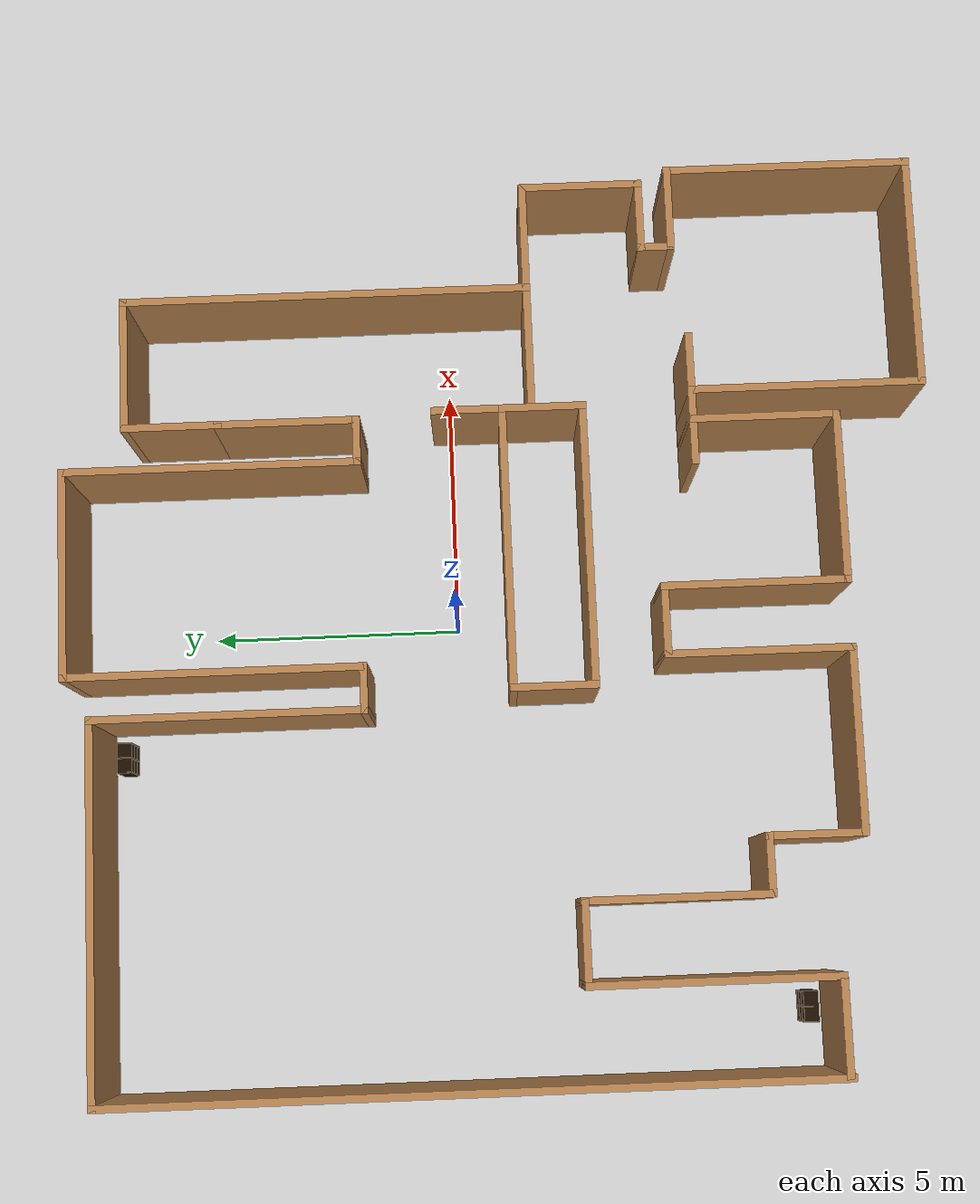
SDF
<sdf version="1.6">
 <world name="default">
  <model name="ground_plane">
   <static>1</static>
   <link name="link">
    <collision name="collision">
     <geometry><plane><normal>0 0 1</normal><size>100 100</size></plane></geometry>
     <surface>
      <contact><collide_bitmask>65535</collide_bitmask></contact>
      <friction><ode><mu>100</mu><mu2>50</mu2></ode></friction>
     </surface>
    </collision>
    <visual name="visual">
     <cast_shadows>0</cast_shadows>
     <geometry><plane><normal>0 0 1</normal><size>100 100</size></plane></geometry>
     <material>
      <script><uri>file://media/materials/scripts/gazebo.material</uri><name>Gazebo/Grey</name></script>
     </material>
    </visual>
   </link>
  </model>
  <model name="map_128">
   <pose>-0.128578 -0.864762 0 0 -0 0</pose>
   <link name="Wall_10">
    <collision name="Wall_10_Collision">
     <geometry><box><size>5 0.15 2.5</size></box></geometry>
     <pose>0 0 1.25 0 -0 0</pose>
    </collision>
    <visual name="Wall_10_Visual">
     <pose>0 0 1.25 0 -0 0</pose>
     <geometry><box><size>5 0.15 2.5</size></box></geometry>
     <material>
      <script><uri>file://media/materials/scripts/gazebo.material</uri><name>Gazebo/Wood</name></script>
      <ambient>1 1 1 1</ambient>
     </material>
     <meta><layer>0</layer></meta>
    </visual>
    <pose>-7.15 -3.8 0 0 -0 1.5708</pose>
   </link>
   <link name="Wall_11">
    <collision name="Wall_11_Collision">
     <geometry><box><size>1.75 0.15 2.5</size></box></geometry>
     <pose>0 0 1.25 0 -0 0</pose>
    </collision>
    <visual name="Wall_11_Visual">
     <pose>0 0 1.25 0 -0 0</pose>
     <geometry><box><size>1.75 0.15 2.5</size></box></geometry>
     <material>
      <script><uri>file://media/materials/scripts/gazebo.material</uri><name>Gazebo/Wood</name></script>
      <ambient>1 1 1 1</ambient>
     </material>
     <meta><layer>0</layer></meta>
    </visual>
    <pose>-6.35 -1.375 0 0 -0 0</pose>
   </link>
   <link name="Wall_12">
    <collision name="Wall_12_Collision">
     <geometry><box><size>3.75 0.15 2.5</size></box></geometry>
     <pose>0 0 1.25 0 -0 0</pose>
    </collision>
    <visual name="Wall_12_Visual">
     <pose>0 0 1.25 0 -0 0</pose>
     <geometry><box><size>3.75 0.15 2.5</size></box></geometry>
     <material>
      <script><uri>file://media/materials/scripts/gazebo.material</uri><name>Gazebo/Wood</name></script>
      <ambient>1 1 1 1</ambient>
     </material>
     <meta><layer>0</layer></meta>
    </visual>
    <pose>-5.55 -3.175 0 0 -0 -1.5708</pose>
   </link>
   <link name="Wall_13">
    <collision name="Wall_13_Collision">
     <geometry><box><size>1.25 0.15 2.5</size></box></geometry>
     <pose>0 0 1.25 0 -0 0</pose>
    </collision>
    <visual name="Wall_13_Visual">
     <pose>0 0 1.25 0 -0 0</pose>
     <geometry><box><size>1.25 0.15 2.5</size></box></geometry>
     <material>
      <script><uri>file://media/materials/scripts/gazebo.material</uri><name>Gazebo/Wood</name></script>
      <ambient>1 1 1 1</ambient>
     </material>
     <meta><layer>0</layer></meta>
    </visual>
    <pose>-5 -4.975 0 0 -0 0</pose>
   </link>
   <link name="Wall_14">
    <collision name="Wall_14_Collision">
     <geometry><box><size>2 0.15 2.5</size></box></geometry>
     <pose>0 0 1.25 0 -0 0</pose>
    </collision>
    <visual name="Wall_14_Visual">
     <pose>0 0 1.25 0 -0 0</pose>
     <geometry><box><size>2 0.15 2.5</size></box></geometry>
     <material>
      <script><uri>file://media/materials/scripts/gazebo.material</uri><name>Gazebo/Wood</name></script>
      <ambient>1 1 1 1</ambient>
     </material>
     <meta><layer>0</layer></meta>
    </visual>
    <pose>-4.45 -5.9 0 0 -0 -1.5708</pose>
   </link>
   <link name="Wall_15">
    <collision name="Wall_15_Collision">
     <geometry><box><size>3.75 0.15 2.5</size></box></geometry>
     <pose>0 0 1.25 0 -0 0</pose>
    </collision>
    <visual name="Wall_15_Visual">
     <pose>0 0 1.25 0 -0 0</pose>
     <geometry><box><size>3.75 0.15 2.5</size></box></geometry>
     <material>
      <script><uri>file://media/materials/scripts/gazebo.material</uri><name>Gazebo/Wood</name></script>
      <ambient>1 1 1 1</ambient>
     </material>
     <meta><layer>0</layer></meta>
    </visual>
    <pose>-2.65 -6.825 0 0 -0 0</pose>
   </link>
   <link name="Wall_16">
    <collision name="Wall_16_Collision">
     <geometry><box><size>3.75 0.15 2.5</size></box></geometry>
     <pose>0 0 1.25 0 -0 0</pose>
    </collision>
    <visual name="Wall_16_Visual">
     <pose>0 0 1.25 0 -0 0</pose>
     <geometry><box><size>3.75 0.15 2.5</size></box></geometry>
     <material>
      <script><uri>file://media/materials/scripts/gazebo.material</uri><name>Gazebo/Wood</name></script>
      <ambient>1 1 1 1</ambient>
     </material>
     <meta><layer>0</layer></meta>
    </visual>
    <pose>-0.85 -5.025 0 0 -0 1.5708</pose>
   </link>
   <link name="Wall_17">
    <collision name="Wall_17_Collision">
     <geometry><box><size>1.5 0.15 2.5</size></box></geometry>
     <pose>0 0 1.25 0 -0 0</pose>
    </collision>
    <visual name="Wall_17_Visual">
     <pose>0 0 1.25 0 -0 0</pose>
     <geometry><box><size>1.5 0.15 2.5</size></box></geometry>
     <material>
      <script><uri>file://media/materials/scripts/gazebo.material</uri><name>Gazebo/Wood</name></script>
      <ambient>1 1 1 1</ambient>
     </material>
     <meta><layer>0</layer></meta>
    </visual>
    <pose>-0.175 -3.225 0 0 -0 0</pose>
   </link>
   <link name="Wall_18">
    <collision name="Wall_18_Collision">
     <geometry><box><size>3.75 0.15 2.5</size></box></geometry>
     <pose>0 0 1.25 0 -0 0</pose>
    </collision>
    <visual name="Wall_18_Visual">
     <pose>0 0 1.25 0 -0 0</pose>
     <geometry><box><size>3.75 0.15 2.5</size></box></geometry>
     <material>
      <script><uri>file://media/materials/scripts/gazebo.material</uri><name>Gazebo/Wood</name></script>
      <ambient>1 1 1 1</ambient>
     </material>
     <meta><layer>0</layer></meta>
    </visual>
    <pose>0.5 -5.025 0 0 -0 -1.5708</pose>
   </link>
   <link name="Wall_19">
    <collision name="Wall_19_Collision">
     <geometry><box><size>3.5 0.15 2.5</size></box></geometry>
     <pose>0 0 1.25 0 -0 0</pose>
    </collision>
    <visual name="Wall_19_Visual">
     <pose>0 0 1.25 0 -0 0</pose>
     <geometry><box><size>3.5 0.15 2.5</size></box></geometry>
     <material>
      <script><uri>file://media/materials/scripts/gazebo.material</uri><name>Gazebo/Wood</name></script>
      <ambient>1 1 1 1</ambient>
     </material>
     <meta><layer>0</layer></meta>
    </visual>
    <pose>2.175 -6.825 0 0 -0 0</pose>
   </link>
   <link name="Wall_20">
    <collision name="Wall_20_Collision">
     <geometry><box><size>3 0.15 2.5</size></box></geometry>
     <pose>0 0 1.25 0 -0 0</pose>
    </collision>
    <visual name="Wall_20_Visual">
     <pose>0 0 1.25 0 -0 0</pose>
     <geometry><box><size>3 0.15 2.5</size></box></geometry>
     <material>
      <script><uri>file://media/materials/scripts/gazebo.material</uri><name>Gazebo/Wood</name></script>
      <ambient>1 1 1 1</ambient>
     </material>
     <meta><layer>0</layer></meta>
    </visual>
    <pose>3.85 -5.4 0 0 -0 1.5708</pose>
   </link>
   <link name="Wall_21">
    <collision name="Wall_21_Collision">
     <geometry><box><size>0.75 0.15 2.5</size></box></geometry>
     <pose>0 0 1.25 0 -0 0</pose>
    </collision>
    <visual name="Wall_21_Visual">
     <pose>0 0 1.25 0 -0 0</pose>
     <geometry><box><size>0.75 0.15 2.5</size></box></geometry>
     <material>
      <script><uri>file://media/materials/scripts/gazebo.material</uri><name>Gazebo/Wood</name></script>
      <ambient>1 1 1 1</ambient>
     </material>
     <meta><layer>0</layer></meta>
    </visual>
    <pose>4.15 -3.975 0 0 -0 0</pose>
   </link>
   <link name="Wall_22">
    <collision name="Wall_22_Collision">
     <geometry><box><size>4.75 0.15 2.5</size></box></geometry>
     <pose>0 0 1.25 0 -0 0</pose>
    </collision>
    <visual name="Wall_22_Visual">
     <pose>0 0 1.25 0 -0 0</pose>
     <geometry><box><size>4.75 0.15 2.5</size></box></geometry>
     <material>
      <script><uri>file://media/materials/scripts/gazebo.material</uri><name>Gazebo/Wood</name></script>
      <ambient>1 1 1 1</ambient>
     </material>
     <meta><layer>0</layer></meta>
    </visual>
    <pose>4.45 -6.275 0 0 -0 -1.5708</pose>
   </link>
   <link name="Wall_23">
    <collision name="Wall_23_Collision">
     <geometry><box><size>4.75 0.15 2.5</size></box></geometry>
     <pose>0 0 1.25 0 -0 0</pose>
    </collision>
    <visual name="Wall_23_Visual">
     <pose>0 0 1.25 0 -0 0</pose>
     <geometry><box><size>4.75 0.15 2.5</size></box></geometry>
     <material>
      <script><uri>file://media/materials/scripts/gazebo.material</uri><name>Gazebo/Wood</name></script>
      <ambient>1 1 1 1</ambient>
     </material>
     <meta><layer>0</layer></meta>
    </visual>
    <pose>6.75 -8.575 0 0 -0 0</pose>
   </link>
   <link name="Wall_24">
    <collision name="Wall_24_Collision">
     <geometry><box><size>5 0.15 2.5</size></box></geometry>
     <pose>0 0 1.25 0 -0 0</pose>
    </collision>
    <visual name="Wall_24_Visual">
     <pose>0 0 1.25 0 -0 0</pose>
     <geometry><box><size>5 0.15 2.5</size></box></geometry>
     <material>
      <script><uri>file://media/materials/scripts/gazebo.material</uri><name>Gazebo/Wood</name></script>
      <ambient>1 1 1 1</ambient>
     </material>
     <meta><layer>0</layer></meta>
    </visual>
    <pose>9.05 -6.15 0 0 -0 1.5708</pose>
   </link>
   <link name="Wall_25">
    <collision name="Wall_25_Collision">
     <geometry><box><size>1.75 0.15 2.5</size></box></geometry>
     <pose>0 0 1.25 0 -0 0</pose>
    </collision>
    <visual name="Wall_25_Visual">
     <pose>0 0 1.25 0 -0 0</pose>
     <geometry><box><size>1.75 0.15 2.5</size></box></geometry>
     <material>
      <script><uri>file://media/materials/scripts/gazebo.material</uri><name>Gazebo/Wood</name></script>
      <ambient>1 1 1 1</ambient>
     </material>
     <meta><layer>0</layer></meta>
    </visual>
    <pose>8.25 -3.725 0 0 -0 3.14159</pose>
   </link>
   <link name="Wall_26">
    <collision name="Wall_26_Collision">
     <geometry><box><size>0.75 0.15 2.5</size></box></geometry>
     <pose>0 0 1.25 0 -0 0</pose>
    </collision>
    <visual name="Wall_26_Visual">
     <pose>0 0 1.25 0 -0 0</pose>
     <geometry><box><size>0.75 0.15 2.5</size></box></geometry>
     <material>
      <script><uri>file://media/materials/scripts/gazebo.material</uri><name>Gazebo/Wood</name></script>
      <ambient>1 1 1 1</ambient>
     </material>
     <meta><layer>0</layer></meta>
    </visual>
    <pose>7.45 -3.425 0 0 -0 1.5708</pose>
   </link>
   <link name="Wall_27">
    <collision name="Wall_27_Collision">
     <geometry><box><size>1.5 0.15 2.5</size></box></geometry>
     <pose>0 0 1.25 0 -0 0</pose>
    </collision>
    <visual name="Wall_27_Visual">
     <pose>0 0 1.25 0 -0 0</pose>
     <geometry><box><size>1.5 0.15 2.5</size></box></geometry>
     <material>
      <script><uri>file://media/materials/scripts/gazebo.material</uri><name>Gazebo/Wood</name></script>
      <ambient>1 1 1 1</ambient>
     </material>
     <meta><layer>0</layer></meta>
    </visual>
    <pose>8.125 -3.125 0 0 -0 0</pose>
   </link>
   <link name="Wall_28">
    <collision name="Wall_28_Collision">
     <geometry><box><size>2.5 0.15 2.5</size></box></geometry>
     <pose>0 0 1.25 0 -0 0</pose>
    </collision>
    <visual name="Wall_28_Visual">
     <pose>0 0 1.25 0 -0 0</pose>
     <geometry><box><size>2.5 0.15 2.5</size></box></geometry>
     <material>
      <script><uri>file://media/materials/scripts/gazebo.material</uri><name>Gazebo/Wood</name></script>
      <ambient>1 1 1 1</ambient>
     </material>
     <meta><layer>0</layer></meta>
    </visual>
    <pose>8.8 -1.95 0 0 -0 1.5708</pose>
   </link>
   <link name="Wall_29">
    <collision name="Wall_29_Collision">
     <geometry><box><size>2.25 0.15 2.5</size></box></geometry>
     <pose>0 0 1.25 0 -0 0</pose>
    </collision>
    <visual name="Wall_29_Visual">
     <pose>0 0 1.25 0 -0 0</pose>
     <geometry><box><size>2.25 0.15 2.5</size></box></geometry>
     <material>
      <script><uri>file://media/materials/scripts/gazebo.material</uri><name>Gazebo/Wood</name></script>
      <ambient>1 1 1 1</ambient>
     </material>
     <meta><layer>0</layer></meta>
    </visual>
    <pose>7.75 -0.775 0 0 -0 3.14159</pose>
   </link>
   <link name="Wall_30">
    <collision name="Wall_30_Collision">
     <geometry><box><size>8.25 0.15 2.5</size></box></geometry>
     <pose>0 0 1.25 0 -0 0</pose>
    </collision>
    <visual name="Wall_30_Visual">
     <pose>0 0 1.25 0 -0 0</pose>
     <geometry><box><size>8.25 0.15 2.5</size></box></geometry>
     <material>
      <script><uri>file://media/materials/scripts/gazebo.material</uri><name>Gazebo/Wood</name></script>
      <ambient>1 1 1 1</ambient>
     </material>
     <meta><layer>0</layer></meta>
    </visual>
    <pose>6.7 3.275 0 0 -0 1.5708</pose>
   </link>
   <link name="Wall_31">
    <collision name="Wall_31_Collision">
     <geometry><box><size>2.75 0.15 2.5</size></box></geometry>
     <pose>0 0 1.25 0 -0 0</pose>
    </collision>
    <visual name="Wall_31_Visual">
     <pose>0 0 1.25 0 -0 0</pose>
     <geometry><box><size>2.75 0.15 2.5</size></box></geometry>
     <material>
      <script><uri>file://media/materials/scripts/gazebo.material</uri><name>Gazebo/Wood</name></script>
      <ambient>1 1 1 1</ambient>
     </material>
     <meta><layer>0</layer></meta>
    </visual>
    <pose>5.4 7.325 0 0 -0 3.14159</pose>
   </link>
   <link name="Wall_32">
    <collision name="Wall_32_Collision">
     <geometry><box><size>2 0.15 2.5</size></box></geometry>
     <pose>0 0 1.25 0 -0 0</pose>
    </collision>
    <visual name="Wall_32_Visual">
     <pose>0 0 1.25 0 -0 0</pose>
     <geometry><box><size>2 0.15 2.5</size></box></geometry>
     <material>
      <script><uri>file://media/materials/scripts/gazebo.material</uri><name>Gazebo/Wood</name></script>
      <ambient>1 1 1 1</ambient>
     </material>
     <meta><layer>0</layer></meta>
    </visual>
    <pose>4.1 6.4 0 0 -0 -1.5708</pose>
   </link>
   <link name="Wall_35">
    <collision name="Wall_35_Collision">
     <geometry><box><size>4.25 0.15 2.5</size></box></geometry>
     <pose>0 0 1.25 0 -0 0</pose>
    </collision>
    <visual name="Wall_35_Visual">
     <pose>0 0 1.25 0 -0 0</pose>
     <geometry><box><size>4.25 0.15 2.5</size></box></geometry>
     <material>
      <script><uri>file://media/materials/scripts/gazebo.material</uri><name>Gazebo/Wood</name></script>
      <ambient>1 1 1 1</ambient>
     </material>
     <meta><layer>0</layer></meta>
    </visual>
    <pose>1.2 8.575 0 0 -0 3.14159</pose>
   </link>
   <link name="Wall_36">
    <collision name="Wall_36_Collision">
     <geometry><box><size>6 0.15 2.5</size></box></geometry>
     <pose>0 0 1.25 0 -0 0</pose>
    </collision>
    <visual name="Wall_36_Visual">
     <pose>0 0 1.25 0 -0 0</pose>
     <geometry><box><size>6 0.15 2.5</size></box></geometry>
     <material>
      <script><uri>file://media/materials/scripts/gazebo.material</uri><name>Gazebo/Wood</name></script>
      <ambient>1 1 1 1</ambient>
     </material>
     <meta><layer>0</layer></meta>
    </visual>
    <pose>-0.85 5.65 0 0 -0 -1.5708</pose>
   </link>
   <link name="Wall_37">
    <collision name="Wall_37_Collision">
     <geometry><box><size>1 0.15 2.5</size></box></geometry>
     <pose>0 0 1.25 0 -0 0</pose>
    </collision>
    <visual name="Wall_37_Visual">
     <pose>0 0 1.25 0 -0 0</pose>
     <geometry><box><size>1 0.15 2.5</size></box></geometry>
     <material>
      <script><uri>file://media/materials/scripts/gazebo.material</uri><name>Gazebo/Wood</name></script>
      <ambient>1 1 1 1</ambient>
     </material>
     <meta><layer>0</layer></meta>
    </visual>
    <pose>-1.275 2.725 0 0 -0 3.14159</pose>
   </link>
   <link name="Wall_38">
    <collision name="Wall_38_Collision">
     <geometry><box><size>5.5 0.15 2.5</size></box></geometry>
     <pose>0 0 1.25 0 -0 0</pose>
    </collision>
    <visual name="Wall_38_Visual">
     <pose>0 0 1.25 0 -0 0</pose>
     <geometry><box><size>5.5 0.15 2.5</size></box></geometry>
     <material>
      <script><uri>file://media/materials/scripts/gazebo.material</uri><name>Gazebo/Wood</name></script>
      <ambient>1 1 1 1</ambient>
     </material>
     <meta><layer>0</layer></meta>
    </visual>
    <pose>-1.7 5.4 0 0 -0 1.5708</pose>
   </link>
   <link name="Wall_39">
    <collision name="Wall_39_Collision">
     <geometry><box><size>7.5 0.15 2.5</size></box></geometry>
     <pose>0 0 1.25 0 -0 0</pose>
    </collision>
    <visual name="Wall_39_Visual">
     <pose>0 0 1.25 0 -0 0</pose>
     <geometry><box><size>7.5 0.15 2.5</size></box></geometry>
     <material>
      <script><uri>file://media/materials/scripts/gazebo.material</uri><name>Gazebo/Wood</name></script>
      <ambient>1 1 1 1</ambient>
     </material>
     <meta><layer>0</layer></meta>
    </visual>
    <pose>-5.375 8.075 0 0 -0 3.14159</pose>
   </link>
   <link name="Wall_41">
    <collision name="Wall_41_Collision">
     <geometry><box><size>14.5 0.15 2.5</size></box></geometry>
     <pose>0 0 1.25 0 -0 0</pose>
    </collision>
    <visual name="Wall_41_Visual">
     <pose>0 0 1.25 0 -0 0</pose>
     <geometry><box><size>14.5 0.15 2.5</size></box></geometry>
     <material>
      <script><uri>file://media/materials/scripts/gazebo.material</uri><name>Gazebo/Wood</name></script>
      <ambient>1 1 1 1</ambient>
     </material>
     <meta><layer>0</layer></meta>
    </visual>
    <pose>-9.05 0.9 0 0 -0 -1.5708</pose>
   </link>
   <link name="Wall_43">
    <collision name="Wall_43_Collision">
     <geometry><box><size>5.75 0.15 2.5</size></box></geometry>
     <pose>0 0 1.25 0 -0 0</pose>
    </collision>
    <visual name="Wall_43_Visual">
     <pose>0 0 1.25 0 -0 0</pose>
     <geometry><box><size>5.75 0.15 2.5</size></box></geometry>
     <material>
      <script><uri>file://media/materials/scripts/gazebo.material</uri><name>Gazebo/Wood</name></script>
      <ambient>1 1 1 1</ambient>
     </material>
     <meta><layer>0</layer></meta>
    </visual>
    <pose>1.41512 -0.186365 0 0 -0 3.14159</pose>
   </link>
   <link name="Wall_44">
    <collision name="Wall_44_Collision">
     <geometry><box><size>1.75 0.15 2.5</size></box></geometry>
     <pose>0 0 1.25 0 -0 0</pose>
    </collision>
    <visual name="Wall_44_Visual">
     <pose>0 0 1.25 0 -0 0</pose>
     <geometry><box><size>1.75 0.15 2.5</size></box></geometry>
     <material>
      <script><uri>file://media/materials/scripts/gazebo.material</uri><name>Gazebo/Wood</name></script>
      <ambient>1 1 1 1</ambient>
     </material>
     <meta><layer>0</layer></meta>
    </visual>
    <pose>-1.38488 -0.986365 0 0 -0 -1.5708</pose>
   </link>
   <link name="Wall_45">
    <collision name="Wall_45_Collision">
     <geometry><box><size>5.75 0.15 2.5</size></box></geometry>
     <pose>0 0 1.25 0 -0 0</pose>
    </collision>
    <visual name="Wall_45_Visual">
     <pose>0 0 1.25 0 -0 0</pose>
     <geometry><box><size>5.75 0.15 2.5</size></box></geometry>
     <material>
      <script><uri>file://media/materials/scripts/gazebo.material</uri><name>Gazebo/Wood</name></script>
      <ambient>1 1 1 1</ambient>
     </material>
     <meta><layer>0</layer></meta>
    </visual>
    <pose>1.41512 -1.78636 0 0 -0 0</pose>
   </link>
   <link name="Wall_46">
    <collision name="Wall_46_Collision">
     <geometry><box><size>1.75 0.15 2.5</size></box></geometry>
     <pose>0 0 1.25 0 -0 0</pose>
    </collision>
    <visual name="Wall_46_Visual">
     <pose>0 0 1.25 0 -0 0</pose>
     <geometry><box><size>1.75 0.15 2.5</size></box></geometry>
     <material>
      <script><uri>file://media/materials/scripts/gazebo.material</uri><name>Gazebo/Wood</name></script>
      <ambient>1 1 1 1</ambient>
     </material>
     <meta><layer>0</layer></meta>
    </visual>
    <pose>4.21512 -0.986365 0 0 -0 1.5708</pose>
   </link>
   <link name="Wall_48">
    <collision name="Wall_48_Collision">
     <geometry><box><size>6 0.15 2.5</size></box></geometry>
     <pose>0 0 1.25 0 -0 0</pose>
    </collision>
    <visual name="Wall_48_Visual">
     <pose>0 0 1.25 0 -0 0</pose>
     <geometry><box><size>6 0.15 2.5</size></box></geometry>
     <material>
      <script><uri>file://media/materials/scripts/gazebo.material</uri><name>Gazebo/Wood</name></script>
      <ambient>1 1 1 1</ambient>
     </material>
     <meta><layer>0</layer></meta>
    </visual>
    <pose>3.25 5.65 0 0 -0 -1.5708</pose>
   </link>
   <link name="Wall_51">
    <collision name="Wall_51_Collision">
     <geometry><box><size>1 0.15 2.5</size></box></geometry>
     <pose>0 0 1.25 0 -0 0</pose>
    </collision>
    <visual name="Wall_51_Visual">
     <pose>0 0 1.25 0 -0 0</pose>
     <geometry><box><size>1 0.15 2.5</size></box></geometry>
     <material>
      <script><uri>file://media/materials/scripts/gazebo.material</uri><name>Gazebo/Wood</name></script>
      <ambient>1 1 1 1</ambient>
     </material>
     <meta><layer>0</layer></meta>
    </visual>
    <pose>3.675 2.725 0 0 -0 0</pose>
   </link>
   <link name="Wall_52">
    <collision name="Wall_52_Collision">
     <geometry><box><size>2.9 0.15 2.5</size></box></geometry>
     <pose>0 0 1.25 0 -0 0</pose>
    </collision>
    <visual name="Wall_52_Visual">
     <pose>0 0 1.25 0 -0 0</pose>
     <geometry><box><size>2.9 0.15 2.5</size></box></geometry>
     <material>
      <script><uri>file://media/materials/scripts/gazebo.material</uri><name>Gazebo/Wood</name></script>
      <ambient>1 1 1 1</ambient>
     </material>
     <meta><layer>0</layer></meta>
    </visual>
    <pose>4.1 4.1 0 0 -0 1.5708</pose>
   </link>
   <link name="Wall_54">
    <collision name="Wall_54_Collision">
     <geometry><box><size>1.5 0.15 2.5</size></box></geometry>
     <pose>0 0 1.25 0 -0 0</pose>
    </collision>
    <visual name="Wall_54_Visual">
     <pose>0 0 1.25 0 -0 0</pose>
     <geometry><box><size>1.5 0.15 2.5</size></box></geometry>
     <material>
      <script><uri>file://media/materials/scripts/gazebo.material</uri><name>Gazebo/Wood</name></script>
      <ambient>1 1 1 1</ambient>
     </material>
     <meta><layer>0</layer></meta>
    </visual>
    <pose>4.21512 0.488635 0 0 -0 1.5708</pose>
   </link>
   <link name="Wall_56">
    <collision name="Wall_56_Collision">
     <geometry><box><size>2.5 0.15 2.5</size></box></geometry>
     <pose>0 0 1.25 0 -0 0</pose>
    </collision>
    <visual name="Wall_56_Visual">
     <pose>0 0 1.25 0 -0 0</pose>
     <geometry><box><size>2.5 0.15 2.5</size></box></geometry>
     <material>
      <script><uri>file://media/materials/scripts/gazebo.material</uri><name>Gazebo/Wood</name></script>
      <ambient>1 1 1 1</ambient>
     </material>
     <meta><layer>0</layer></meta>
    </visual>
    <pose>5.525 -0.775 0 0 -0 3.14159</pose>
   </link>
   <link name="Wall_58">
    <collision name="Wall_58_Collision">
     <geometry><box><size>1.25 0.15 2.5</size></box></geometry>
     <pose>0 0 1.25 0 -0 0</pose>
    </collision>
    <visual name="Wall_58_Visual">
     <pose>0 0 1.25 0 -0 0</pose>
     <geometry><box><size>1.25 0.15 2.5</size></box></geometry>
     <material>
      <script><uri>file://media/materials/scripts/gazebo.material</uri><name>Gazebo/Wood</name></script>
      <ambient>1 1 1 1</ambient>
     </material>
     <meta><layer>0</layer></meta>
    </visual>
    <pose>5 -3.975 0 0 -0 0</pose>
   </link>
   <link name="Wall_60">
    <collision name="Wall_60_Collision">
     <geometry><box><size>1 0.15 2.5</size></box></geometry>
     <pose>0 0 1.25 0 -0 0</pose>
    </collision>
    <visual name="Wall_60_Visual">
     <pose>0 0 1.25 0 -0 0</pose>
     <geometry><box><size>1 0.15 2.5</size></box></geometry>
     <material>
      <script><uri>file://media/materials/scripts/gazebo.material</uri><name>Gazebo/Wood</name></script>
      <ambient>1 1 1 1</ambient>
     </material>
     <meta><layer>0</layer></meta>
    </visual>
    <pose>3.425 -3.975 0 0 -0 3.14159</pose>
   </link>
   <link name="Wall_7">
    <collision name="Wall_7_Collision">
     <geometry><box><size>2 0.15 2.5</size></box></geometry>
     <pose>0 0 1.25 0 -0 0</pose>
    </collision>
    <visual name="Wall_7_Visual">
     <pose>0 0 1.25 0 -0 0</pose>
     <geometry><box><size>2 0.15 2.5</size></box></geometry>
     <material>
      <script><uri>file://media/materials/scripts/gazebo.material</uri><name>Gazebo/Wood</name></script>
      <ambient>1 1 1 1</ambient>
     </material>
     <meta><layer>0</layer></meta>
    </visual>
    <pose>-8.075 -6.225 0 0 -0 0</pose>
   </link>
   <static>1</static>
  </model>
  <model name="6_Cube_StorageE_1">
   <link name="Wall_0">
    <pose>0 0 0.01 0 -0 0</pose>
    <inertial>
     <mass>1.6201</mass>
     <inertia><ixx>0.0119</ixx><iyy>0.0631</iyy><izz>0.0513</izz><ixy>0</ixy><ixz>0</ixz><iyz>0</iyz></inertia>
    </inertial>
    <collision name="Wall_0_Collision"><geometry><box><size>0.616 0.296 0.02</size></box></geometry></collision>
    <visual name="Wall_0_Visual">
     <geometry><box><size>0.616 0.296 0.02</size></box></geometry>
     <material>
      <script><uri>file://media/materials/scripts/gazebo.material</uri><name>Gazebo/Grey</name></script>
      <ambient>0.105882 0.0509804 0 1</ambient>
     </material>
    </visual>
   </link>
   <joint name="0_2" type="fixed">
    <pose>-0.308 0 0 0 -0 0</pose>
    <parent>Wall_2</parent>
    <child>Wall_0</child>
    <axis>
     <xyz>1 0 0</xyz>
     <use_parent_model_frame>0</use_parent_model_frame>
     <limit><lower>-1e+16</lower><upper>1e+16</upper></limit>
    </axis>
   </joint>
   <joint name="0_12" type="fixed">
    <parent>Wall_12</parent>
    <child>Wall_0</child>
    <axis>
     <xyz>0 0 1</xyz>
     <use_parent_model_frame>0</use_parent_model_frame>
     <limit><lower>-1e+16</lower><upper>1e+16</upper></limit>
    </axis>
   </joint>
   <joint name="0_4" type="fixed">
    <pose>0.308 0 0 0 -0 0</pose>
    <parent>Wall_4</parent>
    <child>Wall_0</child>
    <axis>
     <xyz>1 0 0</xyz>
     <use_parent_model_frame>0</use_parent_model_frame>
     <limit><lower>-1e+16</lower><upper>1e+16</upper></limit>
    </axis>
   </joint>
   <link name="Wall_10">
    <pose>0 0 0.61 0 -0 0</pose>
    <inertial>
     <mass>1.6201</mass>
     <inertia><ixx>0.0119</ixx><iyy>0.0631</iyy><izz>0.0513</izz><ixy>0</ixy><ixz>0</ixz><iyz>0</iyz></inertia>
    </inertial>
    <collision name="Wall_10_Collision"><geometry><box><size>0.616 0.296 0.02</size></box></geometry></collision>
    <visual name="Wall_10_Visual">
     <geometry><box><size>0.616 0.296 0.02</size></box></geometry>
     <material>
      <script><uri>file://media/materials/scripts/gazebo.material</uri><name>Gazebo/Grey</name></script>
      <ambient>0.105882 0.0509804 0 1</ambient>
     </material>
    </visual>
   </link>
   <joint name="10_2" type="fixed">
    <pose>-0.308 0 0 0 -0 0</pose>
    <parent>Wall_2</parent>
    <child>Wall_10</child>
    <axis>
     <xyz>1 0 0</xyz>
     <use_parent_model_frame>0</use_parent_model_frame>
     <limit><lower>-1e+16</lower><upper>1e+16</upper></limit>
    </axis>
   </joint>
   <joint name="10_12" type="fixed">
    <parent>Wall_12</parent>
    <child>Wall_10</child>
    <axis>
     <xyz>0 0 1</xyz>
     <use_parent_model_frame>0</use_parent_model_frame>
     <limit><lower>-1e+16</lower><upper>1e+16</upper></limit>
    </axis>
   </joint>
   <joint name="10_4" type="fixed">
    <pose>0.308 0 0 0 -0 0</pose>
    <parent>Wall_4</parent>
    <child>Wall_10</child>
    <axis>
     <xyz>1 0 0</xyz>
     <use_parent_model_frame>0</use_parent_model_frame>
     <limit><lower>-1e+16</lower><upper>1e+16</upper></limit>
    </axis>
   </joint>
   <link name="Wall_12">
    <pose>0 0 0.4575 0 -0 0</pose>
    <inertial>
     <mass>2.4065</mass>
     <inertia><ixx>0.0177</ixx><iyy>0.1855</iyy><izz>0.168</izz><ixy>0</ixy><ixz>0</ixz><iyz>0</iyz></inertia>
    </inertial>
    <collision name="Wall_12_Collision"><geometry><box><size>0.02 0.296 0.915</size></box></geometry></collision>
    <visual name="Wall_12_Visual">
     <geometry><box><size>0.02 0.296 0.915</size></box></geometry>
     <material>
      <script><uri>file://media/materials/scripts/gazebo.material</uri><name>Gazebo/Grey</name></script>
      <ambient>0.105882 0.0509804 0 1</ambient>
     </material>
    </visual>
   </link>
   <link name="Wall_2">
    <pose>-0.298 0 0.4575 0 -0 0</pose>
    <inertial>
     <mass>2.4065</mass>
     <inertia><ixx>0.0177</ixx><iyy>0.1855</iyy><izz>0.168</izz><ixy>0</ixy><ixz>0</ixz><iyz>0</iyz></inertia>
    </inertial>
    <collision name="Wall_2_Collision"><geometry><box><size>0.02 0.296 0.915</size></box></geometry></collision>
    <visual name="Wall_2_Visual">
     <geometry><box><size>0.02 0.296 0.915</size></box></geometry>
     <material>
      <script><uri>file://media/materials/scripts/gazebo.material</uri><name>Gazebo/Grey</name></script>
      <ambient>0.105882 0.0509804 0 1</ambient>
     </material>
    </visual>
   </link>
   <link name="Wall_4">
    <pose>0.298 0 0.4575 0 -0 0</pose>
    <inertial>
     <mass>2.4065</mass>
     <inertia><ixx>0.0177</ixx><iyy>0.1855</iyy><izz>0.168</izz><ixy>0</ixy><ixz>0</ixz><iyz>0</iyz></inertia>
    </inertial>
    <collision name="Wall_4_Collision"><geometry><box><size>0.02 0.296 0.915</size></box></geometry></collision>
    <visual name="Wall_4_Visual">
     <geometry><box><size>0.02 0.296 0.915</size></box></geometry>
     <material>
      <script><uri>file://media/materials/scripts/gazebo.material</uri><name>Gazebo/Grey</name></script>
      <ambient>0.105882 0.0509804 0 1</ambient>
     </material>
    </visual>
   </link>
   <link name="Wall_6">
    <pose>0 0 0.905 0 -0 0</pose>
    <inertial>
     <mass>1.6201</mass>
     <inertia><ixx>0.0119</ixx><iyy>0.0631</iyy><izz>0.0513</izz><ixy>0</ixy><ixz>0</ixz><iyz>0</iyz></inertia>
    </inertial>
    <collision name="Wall_6_Collision"><geometry><box><size>0.616 0.296 0.02</size></box></geometry></collision>
    <visual name="Wall_6_Visual">
     <geometry><box><size>0.616 0.296 0.02</size></box></geometry>
     <material>
      <script><uri>file://media/materials/scripts/gazebo.material</uri><name>Gazebo/Grey</name></script>
      <ambient>0.105882 0.0509804 0 1</ambient>
     </material>
    </visual>
   </link>
   <joint name="6_2" type="fixed">
    <pose>-0.308 0 0 0 -0 0</pose>
    <parent>Wall_2</parent>
    <child>Wall_6</child>
    <axis>
     <xyz>2 0 0</xyz>
     <use_parent_model_frame>0</use_parent_model_frame>
     <limit><lower>-1e+16</lower><upper>1e+16</upper></limit>
    </axis>
   </joint>
   <joint name="6_12" type="fixed">
    <parent>Wall_12</parent>
    <child>Wall_6</child>
    <axis>
     <xyz>0 0 1</xyz>
     <use_parent_model_frame>0</use_parent_model_frame>
     <limit><lower>-1e+16</lower><upper>1e+16</upper></limit>
    </axis>
   </joint>
   <joint name="6_4" type="fixed">
    <pose>0.308 0 0 0 -0 0</pose>
    <parent>Wall_4</parent>
    <child>Wall_6</child>
    <axis>
     <xyz>1 0 0</xyz>
     <use_parent_model_frame>0</use_parent_model_frame>
     <limit><lower>-1e+16</lower><upper>1e+16</upper></limit>
    </axis>
   </joint>
   <link name="Wall_8">
    <pose>0 0 0.305 0 -0 0</pose>
    <inertial>
     <mass>1.6201</mass>
     <inertia><ixx>0.0119</ixx><iyy>0.0631</iyy><izz>0.0513</izz><ixy>0</ixy><ixz>0</ixz><iyz>0</iyz></inertia>
    </inertial>
    <collision name="Wall_8_Collision"><geometry><box><size>0.616 0.296 0.02</size></box></geometry></collision>
    <visual name="Wall_8_Visual">
     <geometry><box><size>0.616 0.296 0.02</size></box></geometry>
     <material>
      <script><uri>file://media/materials/scripts/gazebo.material</uri><name>Gazebo/Grey</name></script>
      <ambient>0.105882 0.0509804 0 1</ambient>
     </material>
    </visual>
   </link>
   <joint name="8_2" type="fixed">
    <pose>-0.308 0 0 0 -0 0</pose>
    <parent>Wall_2</parent>
    <child>Wall_8</child>
    <axis>
     <xyz>1 0 0</xyz>
     <use_parent_model_frame>0</use_parent_model_frame>
     <limit><lower>-1e+16</lower><upper>1e+16</upper></limit>
    </axis>
   </joint>
   <joint name="8_12" type="fixed">
    <parent>Wall_12</parent>
    <child>Wall_8</child>
    <axis>
     <xyz>0 0 1</xyz>
     <use_parent_model_frame>0</use_parent_model_frame>
     <limit><lower>-1e+16</lower><upper>1e+16</upper></limit>
    </axis>
   </joint>
   <joint name="8_4" type="fixed">
    <pose>0.308 0 0 0 -0 0</pose>
    <parent>Wall_4</parent>
    <child>Wall_8</child>
    <axis>
     <xyz>1 0 0</xyz>
     <use_parent_model_frame>0</use_parent_model_frame>
     <limit><lower>-1e+16</lower><upper>1e+16</upper></limit>
    </axis>
   </joint>
   <static>1</static>
   <pose>-7.89091 -6.68079 0 0 -0 0</pose>
  </model>
  <model name="6_Cube_StorageE_2">
   <link name="Wall_0">
    <pose>0 0 0.01 0 -0 0</pose>
    <inertial>
     <mass>1.6201</mass>
     <inertia><ixx>0.0119</ixx><iyy>0.0631</iyy><izz>0.0513</izz><ixy>0</ixy><ixz>0</ixz><iyz>0</iyz></inertia>
    </inertial>
    <collision name="Wall_0_Collision"><geometry><box><size>0.616 0.296 0.02</size></box></geometry></collision>
    <visual name="Wall_0_Visual">
     <geometry><box><size>0.616 0.296 0.02</size></box></geometry>
     <material>
      <script><uri>file://media/materials/scripts/gazebo.material</uri><name>Gazebo/Grey</name></script>
      <ambient>0.105882 0.0509804 0 1</ambient>
     </material>
    </visual>
   </link>
   <joint name="0_2" type="fixed">
    <pose>-0.308 0 0 0 -0 0</pose>
    <parent>Wall_2</parent>
    <child>Wall_0</child>
    <axis>
     <xyz>1 0 0</xyz>
     <use_parent_model_frame>0</use_parent_model_frame>
     <limit><lower>-1e+16</lower><upper>1e+16</upper></limit>
    </axis>
   </joint>
   <joint name="0_12" type="fixed">
    <parent>Wall_12</parent>
    <child>Wall_0</child>
    <axis>
     <xyz>0 0 1</xyz>
     <use_parent_model_frame>0</use_parent_model_frame>
     <limit><lower>-1e+16</lower><upper>1e+16</upper></limit>
    </axis>
   </joint>
   <joint name="0_4" type="fixed">
    <pose>0.308 0 0 0 -0 0</pose>
    <parent>Wall_4</parent>
    <child>Wall_0</child>
    <axis>
     <xyz>1 0 0</xyz>
     <use_parent_model_frame>0</use_parent_model_frame>
     <limit><lower>-1e+16</lower><upper>1e+16</upper></limit>
    </axis>
   </joint>
   <link name="Wall_10">
    <pose>0 0 0.61 0 -0 0</pose>
    <inertial>
     <mass>1.6201</mass>
     <inertia><ixx>0.0119</ixx><iyy>0.0631</iyy><izz>0.0513</izz><ixy>0</ixy><ixz>0</ixz><iyz>0</iyz></inertia>
    </inertial>
    <collision name="Wall_10_Collision"><geometry><box><size>0.616 0.296 0.02</size></box></geometry></collision>
    <visual name="Wall_10_Visual">
     <geometry><box><size>0.616 0.296 0.02</size></box></geometry>
     <material>
      <script><uri>file://media/materials/scripts/gazebo.material</uri><name>Gazebo/Grey</name></script>
      <ambient>0.105882 0.0509804 0 1</ambient>
     </material>
    </visual>
   </link>
   <joint name="10_2" type="fixed">
    <pose>-0.308 0 0 0 -0 0</pose>
    <parent>Wall_2</parent>
    <child>Wall_10</child>
    <axis>
     <xyz>1 0 0</xyz>
     <use_parent_model_frame>0</use_parent_model_frame>
     <limit><lower>-1e+16</lower><upper>1e+16</upper></limit>
    </axis>
   </joint>
   <joint name="10_12" type="fixed">
    <parent>Wall_12</parent>
    <child>Wall_10</child>
    <axis>
     <xyz>0 0 1</xyz>
     <use_parent_model_frame>0</use_parent_model_frame>
     <limit><lower>-1e+16</lower><upper>1e+16</upper></limit>
    </axis>
   </joint>
   <joint name="10_4" type="fixed">
    <pose>0.308 0 0 0 -0 0</pose>
    <parent>Wall_4</parent>
    <child>Wall_10</child>
    <axis>
     <xyz>1 0 0</xyz>
     <use_parent_model_frame>0</use_parent_model_frame>
     <limit><lower>-1e+16</lower><upper>1e+16</upper></limit>
    </axis>
   </joint>
   <link name="Wall_12">
    <pose>0 0 0.4575 0 -0 0</pose>
    <inertial>
     <mass>2.4065</mass>
     <inertia><ixx>0.0177</ixx><iyy>0.1855</iyy><izz>0.168</izz><ixy>0</ixy><ixz>0</ixz><iyz>0</iyz></inertia>
    </inertial>
    <collision name="Wall_12_Collision"><geometry><box><size>0.02 0.296 0.915</size></box></geometry></collision>
    <visual name="Wall_12_Visual">
     <geometry><box><size>0.02 0.296 0.915</size></box></geometry>
     <material>
      <script><uri>file://media/materials/scripts/gazebo.material</uri><name>Gazebo/Grey</name></script>
      <ambient>0.105882 0.0509804 0 1</ambient>
     </material>
    </visual>
   </link>
   <link name="Wall_2">
    <pose>-0.298 0 0.4575 0 -0 0</pose>
    <inertial>
     <mass>2.4065</mass>
     <inertia><ixx>0.0177</ixx><iyy>0.1855</iyy><izz>0.168</izz><ixy>0</ixy><ixz>0</ixz><iyz>0</iyz></inertia>
    </inertial>
    <collision name="Wall_2_Collision"><geometry><box><size>0.02 0.296 0.915</size></box></geometry></collision>
    <visual name="Wall_2_Visual">
     <geometry><box><size>0.02 0.296 0.915</size></box></geometry>
     <material>
      <script><uri>file://media/materials/scripts/gazebo.material</uri><name>Gazebo/Grey</name></script>
      <ambient>0.105882 0.0509804 0 1</ambient>
     </material>
    </visual>
   </link>
   <link name="Wall_4">
    <pose>0.298 0 0.4575 0 -0 0</pose>
    <inertial>
     <mass>2.4065</mass>
     <inertia><ixx>0.0177</ixx><iyy>0.1855</iyy><izz>0.168</izz><ixy>0</ixy><ixz>0</ixz><iyz>0</iyz></inertia>
    </inertial>
    <collision name="Wall_4_Collision"><geometry><box><size>0.02 0.296 0.915</size></box></geometry></collision>
    <visual name="Wall_4_Visual">
     <geometry><box><size>0.02 0.296 0.915</size></box></geometry>
     <material>
      <script><uri>file://media/materials/scripts/gazebo.material</uri><name>Gazebo/Grey</name></script>
      <ambient>0.105882 0.0509804 0 1</ambient>
     </material>
    </visual>
   </link>
   <link name="Wall_6">
    <pose>0 0 0.905 0 -0 0</pose>
    <inertial>
     <mass>1.6201</mass>
     <inertia><ixx>0.0119</ixx><iyy>0.0631</iyy><izz>0.0513</izz><ixy>0</ixy><ixz>0</ixz><iyz>0</iyz></inertia>
    </inertial>
    <collision name="Wall_6_Collision"><geometry><box><size>0.616 0.296 0.02</size></box></geometry></collision>
    <visual name="Wall_6_Visual">
     <geometry><box><size>0.616 0.296 0.02</size></box></geometry>
     <material>
      <script><uri>file://media/materials/scripts/gazebo.material</uri><name>Gazebo/Grey</name></script>
      <ambient>0.105882 0.0509804 0 1</ambient>
     </material>
    </visual>
   </link>
   <joint name="6_2" type="fixed">
    <pose>-0.308 0 0 0 -0 0</pose>
    <parent>Wall_2</parent>
    <child>Wall_6</child>
    <axis>
     <xyz>2 0 0</xyz>
     <use_parent_model_frame>0</use_parent_model_frame>
     <limit><lower>-1e+16</lower><upper>1e+16</upper></limit>
    </axis>
   </joint>
   <joint name="6_12" type="fixed">
    <parent>Wall_12</parent>
    <child>Wall_6</child>
    <axis>
     <xyz>0 0 1</xyz>
     <use_parent_model_frame>0</use_parent_model_frame>
     <limit><lower>-1e+16</lower><upper>1e+16</upper></limit>
    </axis>
   </joint>
   <joint name="6_4" type="fixed">
    <pose>0.308 0 0 0 -0 0</pose>
    <parent>Wall_4</parent>
    <child>Wall_6</child>
    <axis>
     <xyz>1 0 0</xyz>
     <use_parent_model_frame>0</use_parent_model_frame>
     <limit><lower>-1e+16</lower><upper>1e+16</upper></limit>
    </axis>
   </joint>
   <link name="Wall_8">
    <pose>0 0 0.305 0 -0 0</pose>
    <inertial>
     <mass>1.6201</mass>
     <inertia><ixx>0.0119</ixx><iyy>0.0631</iyy><izz>0.0513</izz><ixy>0</ixy><ixz>0</ixz><iyz>0</iyz></inertia>
    </inertial>
    <collision name="Wall_8_Collision"><geometry><box><size>0.616 0.296 0.02</size></box></geometry></collision>
    <visual name="Wall_8_Visual">
     <geometry><box><size>0.616 0.296 0.02</size></box></geometry>
     <material>
      <script><uri>file://media/materials/scripts/gazebo.material</uri><name>Gazebo/Grey</name></script>
      <ambient>0.105882 0.0509804 0 1</ambient>
     </material>
    </visual>
   </link>
   <joint name="8_2" type="fixed">
    <pose>-0.308 0 0 0 -0 0</pose>
    <parent>Wall_2</parent>
    <child>Wall_8</child>
    <axis>
     <xyz>1 0 0</xyz>
     <use_parent_model_frame>0</use_parent_model_frame>
     <limit><lower>-1e+16</lower><upper>1e+16</upper></limit>
    </axis>
   </joint>
   <joint name="8_12" type="fixed">
    <parent>Wall_12</parent>
    <child>Wall_8</child>
    <axis>
     <xyz>0 0 1</xyz>
     <use_parent_model_frame>0</use_parent_model_frame>
     <limit><lower>-1e+16</lower><upper>1e+16</upper></limit>
    </axis>
   </joint>
   <joint name="8_4" type="fixed">
    <pose>0.308 0 0 0 -0 0</pose>
    <parent>Wall_4</parent>
    <child>Wall_8</child>
    <axis>
     <xyz>1 0 0</xyz>
     <use_parent_model_frame>0</use_parent_model_frame>
     <limit><lower>-1e+16</lower><upper>1e+16</upper></limit>
    </axis>
   </joint>
   <static>1</static>
   <pose>-2.42722 6.82055 0 0 -0 0</pose>
  </model>
 </world>
</sdf>
